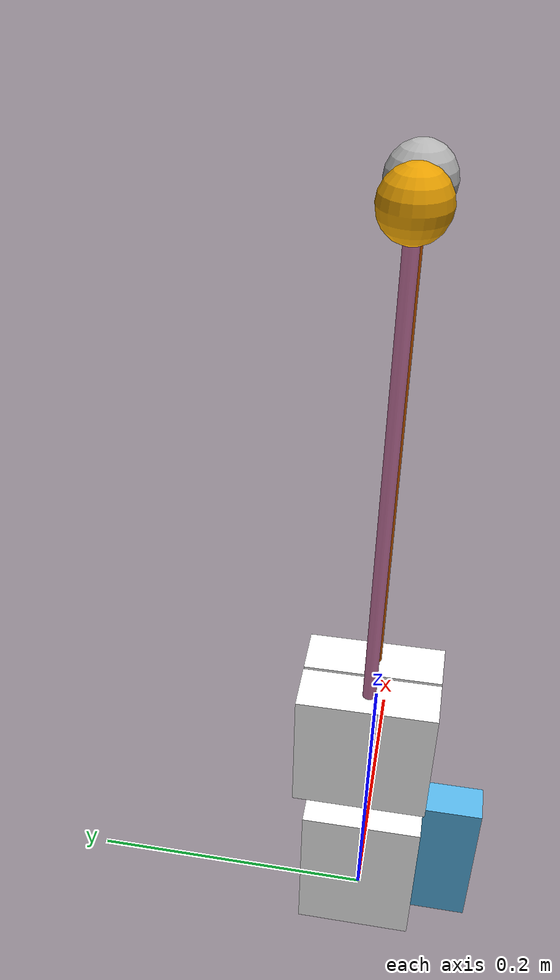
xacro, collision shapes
<?xml version="1.0"?>

<!-- Xacro definition of the flexible two mallet holder -->

<robot xmlns:xacro="http://www.ros.org/wiki/xacro" name="two_mallet_compliance_holder">

    <!-- Link definitions -->

    <!-- Mallet Assembly Base Part -->
    <link name="mallet_base_link">
        <visual>
            <origin xyz="${(7-77/2)/1000} ${(6-(68.4+6+6)/2)/1000} ${110/1000}" rpy="${-pi / 2} 0.0 0.0"/>
            <geometry>
                <mesh filename="package://marimbabot_description/mesh/two_mallet_base_element.stl" scale="0.001 0.001 0.001"/>
            </geometry>
            <material name="mallet_holder_white">
                <color rgba="1.0 1.0 1.0 1.0"/>
            </material>
        </visual>
        <collision>
            <origin xyz="0.0 0.0 ${0.11/2}" rpy="0.0 0.0 0.0"/>
            <geometry>
                <box size="0.077 ${(68.4+6+6)/1000} 0.11"/>
            </geometry>
        </collision>
        <inertial>
            <origin xyz="0 0 0" rpy="0 0 0"/>
            <mass value="0.01"/>
            <inertia ixx="0.001" ixy="0" ixz="0" iyy="0.001" iyz="0" izz="0.001"/>
        </inertial>
    </link>

    <!-- Mallet Battery Collision Object for the battery location -->
    <link name="mallet_battery_collision">
        <collision>
            <origin xyz="-${0.026/2} -${0.04/2} ${0.11/2}" rpy="0.0 0.0 0.0"/>
            <geometry>
                <box size="0.026 0.04 0.11"/>
            </geometry>
        </collision>
    </link>

    <!-- Mallet Servo Box Containing the Servo -->
    <link name="mallet_servo_box">
        <visual>
            <origin xyz="${-(10)/1000} ${(6-(68.4+6+6)/2)/1000} ${(13.3+10)/1000}" rpy="${-pi / 2} 0.0 0.0"/>
            <geometry>
                <mesh filename="package://marimbabot_description/mesh/two_mallet_servo_element.stl" scale="0.001 0.001 0.001"/>
            </geometry>
            <material name="mallet_holder_white">
                <color rgba="1.0 1.0 1.0 1.0"/>
            </material>
        </visual>
        <inertial>
            <origin xyz="0 0 0" rpy="0 0 0"/>
            <mass value="0.01"/>
            <inertia ixx="0.001" ixy="0" ixz="0" iyy="0.001" iyz="0" izz="0.001"/>
        </inertial>
    </link>

    <!-- Mallet Base Box for the first, fixed mallet -->
    <link name="mallet_base_box_1">
        <visual>
            <origin xyz="0.0 0.0 ${(90/2)/1000}" rpy="${-pi / 2} ${-pi / 2} 0.0"/>
            <geometry>
                <mesh filename="package://marimbabot_description/mesh/mallet_double_flex.stl" scale="0.001 0.001 0.001"/>
            </geometry>
            <material name="mallet_holder_white">
                <color rgba="1.0 1.0 1.0 1.0"/>
            </material>
        </visual>
        <collision>
            <origin xyz="0.0 0.0 0.045" rpy="0.0 0.0 0.0"/>
            <geometry>
                <box size="0.033 0.09 0.09"/>
            </geometry>
        </collision>
        <inertial>
            <origin xyz="0 0 0" rpy="0 0 0"/>
            <mass value="0.01"/>
            <inertia ixx="0.001" ixy="0" ixz="0" iyy="0.001" iyz="0" izz="0.001"/>
        </inertial>
    </link>

    <!-- Mallet Base Box for the second, servo controlled mallet -->
    <link name="mallet_base_box_2">
        <visual>
            <origin xyz="0.0 0.0 ${(90/2)/1000}" rpy="${-pi / 2} ${-pi / 2} ${pi}"/>
            <geometry>
                <mesh filename="package://marimbabot_description/mesh/mallet_double_flex.stl" scale="0.001 0.001 0.001"/>
            </geometry>
            <material name="mallet_holder_white">
                <color rgba="1.0 1.0 1.0 1.0"/>
            </material>
        </visual>
        <collision>
            <origin xyz="0.0 0.0 0.045" rpy="0.0 0.0 0.0"/>
            <geometry>
                <box size="0.033 0.09 0.09"/>
            </geometry>
        </collision>
        <inertial>
            <origin xyz="0 0 0" rpy="0 0 0"/>
            <mass value="0.01"/>
            <inertia ixx="0.001" ixy="0" ixz="0" iyy="0.001" iyz="0" izz="0.001"/>
        </inertial>
    </link>

    <!-- Mallet Neck for the first, fixed mallet -->
    <link name="mallet_neck_1">
        <collision>
            <origin xyz="0.0 0.0 ${0.1825+0.005}" rpy="0.0 0.0 0.0"/>
            <geometry>
                <cylinder radius="0.0042" length="0.375"/>
            </geometry>
        </collision>
        <inertial>
            <origin xyz="0 0 0" rpy="0 0 0"/>
            <mass value="0.01"/>
            <inertia ixx="0.001" ixy="0" ixz="0" iyy="0.001" iyz="0" izz="0.001"/>
        </inertial>
    </link>

    <!-- Mallet Neck for the second, servo controlled mallet -->
    <link name="mallet_neck_2">
        <collision>
            <origin xyz="0.0 0.0 ${0.1825+0.005}" rpy="0.0 0.0 0.0"/>
            <geometry>
                <cylinder radius="0.0042" length="0.375"/>
            </geometry>
        </collision>
        <inertial>
            <origin xyz="0 0 0" rpy="0 0 0"/>
            <mass value="0.01"/>
            <inertia ixx="0.001" ixy="0" ixz="0" iyy="0.001" iyz="0" izz="0.001"/>
        </inertial>
    </link>

    <!-- Mallet Top for the first, fixed mallet -->
    <link name="mallet_head_1">
        <collision>
            <origin xyz="0.0 0.0 0.0" rpy="0.0 0.0 0.0"/>
            <geometry>
                <sphere radius="0.018375"/>
            </geometry>
        </collision>
        <inertial>
            <origin xyz="0 0 0" rpy="0 0 0"/>
            <mass value="0.01"/>
            <inertia ixx="0.001" ixy="0" ixz="0" iyy="0.001" iyz="0" izz="0.001"/>
        </inertial>
    </link>

    <!-- Mallet Top for the second, servo controlled mallet -->
    <link name="mallet_head_2">
        <collision>
            <origin xyz="0.0 0.0 0.0" rpy="0.0 0.0 0.0"/>
            <geometry>
                <sphere radius="0.018375"/>
            </geometry>
        </collision>
        <inertial>
            <origin xyz="0 0 0" rpy="0 0 0"/>
            <mass value="0.01"/>
            <inertia ixx="0.001" ixy="0" ixz="0" iyy="0.001" iyz="0" izz="0.001"/>
        </inertial>
    </link>

    <!-- Joint definitions -->
    <!-- Most joints are fixed with the exception of the mallet_finger servo joint -->

    <joint name="mallet_base_link_battery" type="fixed">
        <parent link="mallet_base_link"/>
        <child link="mallet_battery_collision"/>
        <origin xyz="0.0115 -0.0405 0.0"/>
    </joint>

    <joint name="mallet_base_link_group_1" type="fixed">
        <parent link="mallet_base_link"/>
        <child link="mallet_base_box_1"/>
        <origin xyz="${(77/2-35/2)/1000} 0.0038 ${(110+12-0.2)/1000}"/>
    </joint>

    <!-- Joint for the servo -->
    <joint name="mallet_finger" type="revolute">
        <parent link="mallet_base_link"/>
        <child link="mallet_servo_box"/>
        <origin xyz="${(-77/2+10+7)/1000} 0.0 ${0.0368+(110-60)/1000}"/>
        <limit lower="0.0" upper="1.22" effort="2.0" velocity="7.0"/>
        <axis xyz="0.0 -1.0 0.0"/>
    </joint>

    <transmission name="mallet_finger_transmission">
      <type>transmission_interface/SimpleTransmission</type>
      <actuator name="mallet_finger_motor">
        <mechanicalReduction>1.0</mechanicalReduction>
      </actuator>
      <joint name="mallet_finger">
        <hardwareInterface>hardware_interface/EffortJointInterface</hardwareInterface>
      </joint>
    </transmission>

    <joint name="mallet_group_1_start_link" type="fixed">
        <parent link="mallet_base_box_1"/>
        <child link="mallet_neck_1"/>
        <origin xyz="0.0 0.0 0.015"/>
    </joint>

    <joint name="mallet_group_1_2nd_link" type="fixed">
        <parent link="mallet_neck_1"/>
        <child link="mallet_head_1"/>
        <origin xyz="0.0 0.0 ${0.365+0.018375}"/>
    </joint>

    <joint name="mallet_group_2_start_link" type="fixed">
        <parent link="mallet_servo_box"/>
        <child link="mallet_base_box_2"/>
        <origin xyz="0.0075 0.0038 0.0351"/>
    </joint>

    <joint name="mallet_group_2_2nd_link" type="fixed">
        <parent link="mallet_base_box_2"/>
        <child link="mallet_neck_2"/>
        <origin xyz="0.0 0.0 0.015"/>
    </joint>

    <joint name="mallet_group_2_3rd_link" type="fixed">
        <parent link="mallet_neck_2"/>
        <child link="mallet_head_2"/>
        <origin xyz="0.0 0.0 ${0.365+0.018375}"/>
    </joint>
</robot>
